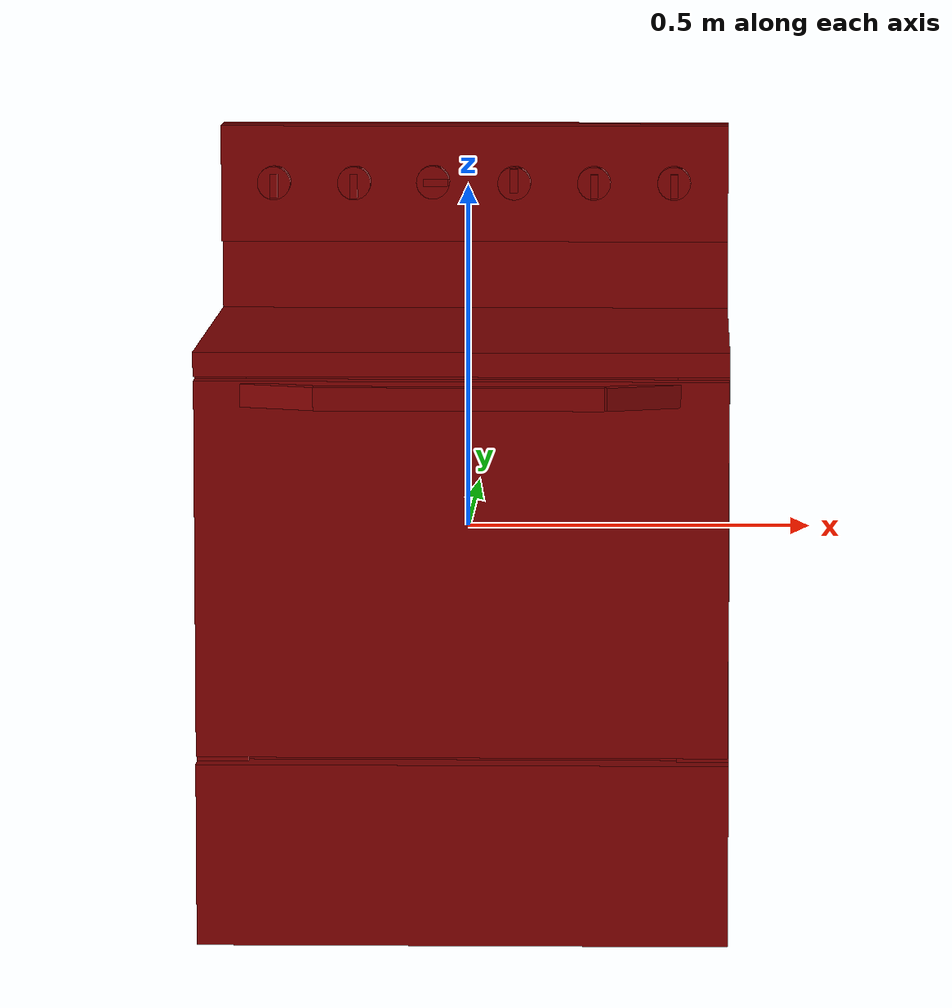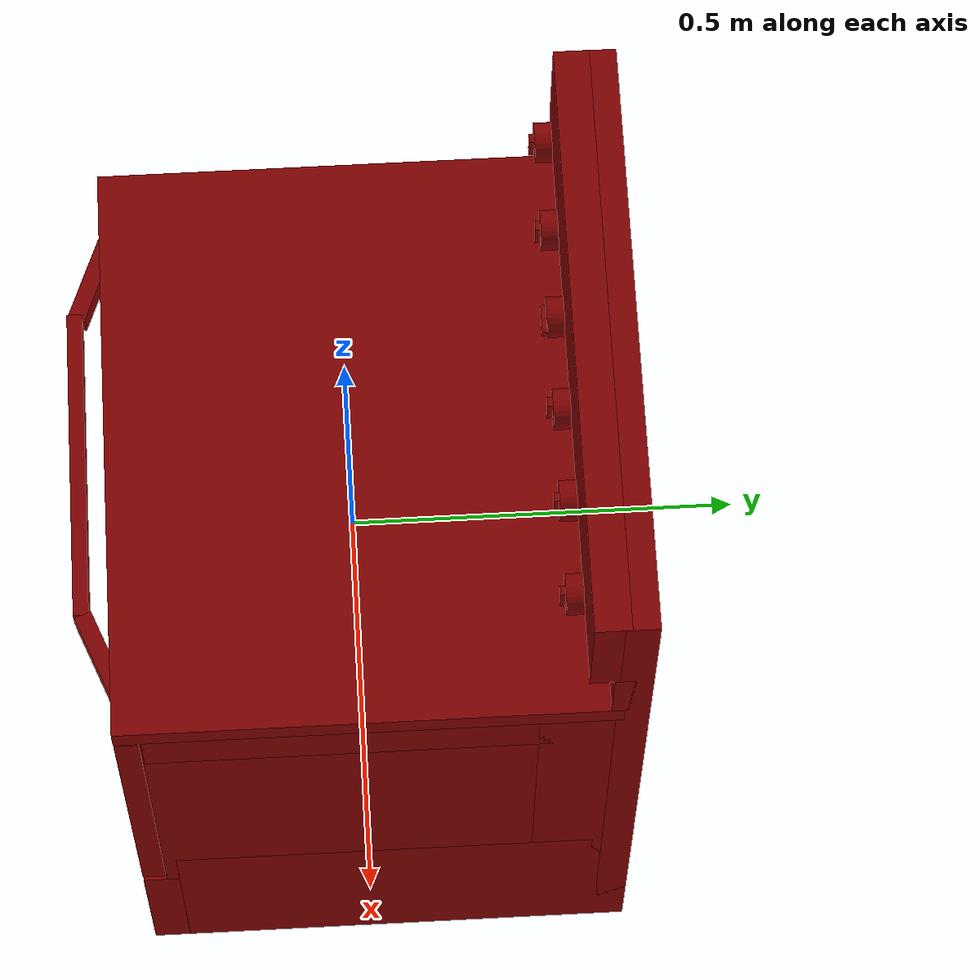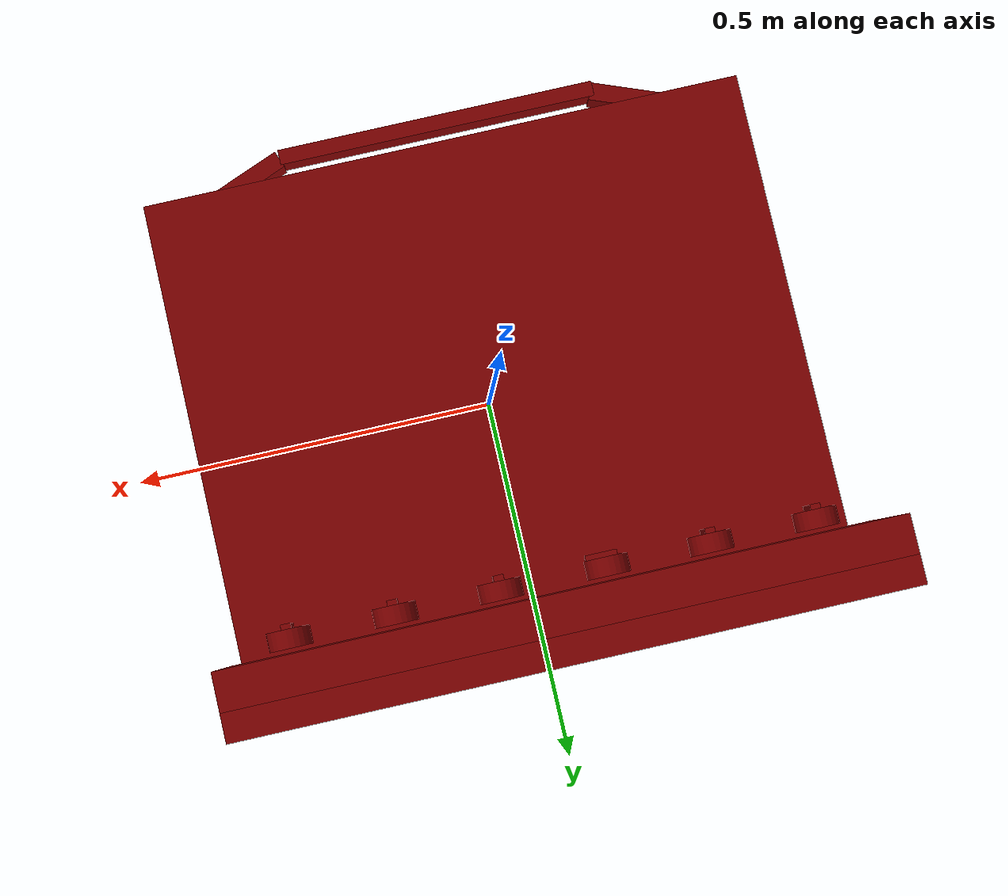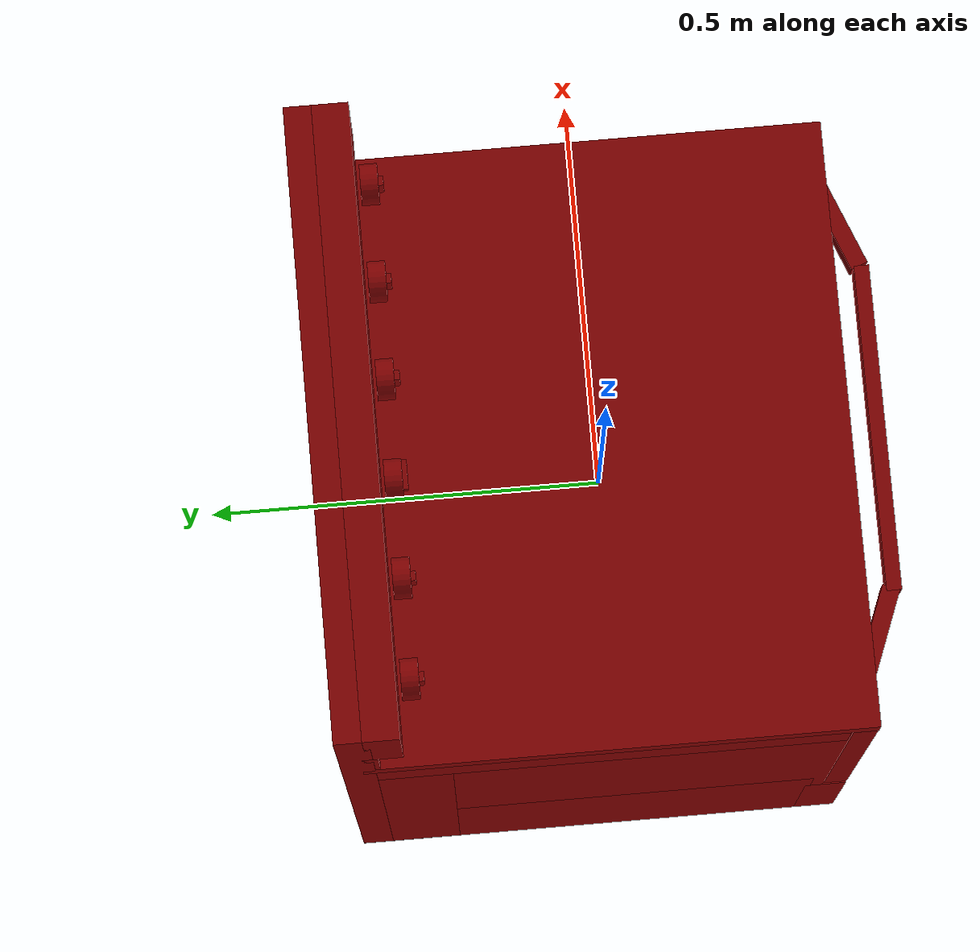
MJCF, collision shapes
<?xml version='1.0' encoding='UTF-8'?>
<mujoco model="model">
  <option timestep="0.002" gravity="0.0 0.0 -9.81"/>
  <compiler angle="radian"/>
  <asset>
    <mesh file="visuals/knob_front_left.obj" name="knob_front_left_vis"/>
    <mesh file="visuals/knob_front_right.obj" name="knob_front_right_vis"/>
    <mesh file="visuals/knob_rear_left.obj" name="knob_rear_left_vis"/>
    <mesh file="visuals/knob_rear_right.obj" name="knob_rear_right_vis"/>
    <mesh file="visuals/Body001.obj" name="Body001_vis"/>
    <mesh file="visuals/Door001.obj" name="Door001_vis"/>
    <mesh file="visuals/Door001_Clear.obj" name="Door001_Clear_vis"/>
    <mesh file="visuals/Knob001.obj" name="Knob001_vis"/>
    <mesh file="visuals/Knob002.obj" name="Knob002_vis"/>
    <mesh file="visuals/Shelf001.obj" name="Shelf001_vis"/>
    <texture file="visuals/T_BC001.png" name="Body001_material" type="2d"/>
    <material name="Body001_material" rgba="1 1 1 1.0" texture="Body001_material" shininess="0.4472135901451111" specular="1"/>
    <texture file="visuals/T_BC001.png" name="knob_front_left_material" type="2d"/>
    <material name="knob_front_left_material" rgba="1 1 1 1.0" texture="knob_front_left_material" shininess="0.4472135901451111" specular="0.3103448502657381"/>
    <texture file="visuals/T_BC001.png" name="knob_front_right_material" type="2d"/>
    <material name="knob_front_right_material" rgba="1 1 1 1.0" texture="knob_front_right_material" shininess="0.4472135901451111" specular="0.3103448502657381"/>
    <texture file="visuals/T_BC001.png" name="knob_rear_left_material" type="2d"/>
    <material name="knob_rear_left_material" rgba="1 1 1 1.0" texture="knob_rear_left_material" shininess="0.4472135901451111" specular="0.3103448502657381"/>
    <texture file="visuals/T_BC001.png" name="knob_rear_right_material" type="2d"/>
    <material name="knob_rear_right_material" rgba="1 1 1 1.0" texture="knob_rear_right_material" shininess="0.4472135901451111" specular="0.3103448502657381"/>
    <texture file="visuals/T_BC001.png" name="Door001_material" type="2d"/>
    <material name="Door001_material" rgba="1 1 1 1.0" texture="Door001_material" shininess="0.4472135901451111" specular="1"/>
    <texture file="visuals/T_BC001.png" name="Door001_Clear_material" type="2d"/>
    <material name="Door001_Clear_material" rgba="1 1 1 0.5" texture="Door001_Clear_material" shininess="0.4472135901451111" specular="0.3103448502657381"/>
    <texture file="visuals/T_BC001.png" name="Knob001_material" type="2d"/>
    <material name="Knob001_material" rgba="1 1 1 1.0" texture="Knob001_material" shininess="0.4472135901451111" specular="0.3103448502657381"/>
    <texture file="visuals/T_BC001.png" name="Knob002_material" type="2d"/>
    <material name="Knob002_material" rgba="1 1 1 1.0" texture="Knob002_material" shininess="0.4472135901451111" specular="0.3103448502657381"/>
    <texture file="visuals/T_BC001.png" name="Shelf001_material" type="2d"/>
    <material name="Shelf001_material" rgba="1 1 1 1.0" texture="Shelf001_material" shininess="0.4472135901451111" specular="5"/>
  </asset>
  <default>
    <default class="visual">
      <geom conaffinity="0" contype="0" group="1" type="mesh"/>
    </default>
    <default class="collision">
      <geom group="0" rgba="0.5 0 0 0.5"/>
    </default>
    <default class="spawn">
      <geom group="0" rgba="1 1 1 0.5" contype="0" conaffinity="0"/>
      <site group="0" rgba="1 1 1 0.5"/>
    </default>
    <default class="region">
      <geom group="1" conaffinity="0" contype="0" rgba="0 1 0 0"/>
    </default>
  </default>
  <worldbody>
    <body>
      <body name="object">
        <geom mesh="Body001_vis" type="mesh" solimp="0.998 0.998 0.001" solref="0.001 1" friction="0.95 0.3 0.1" class="visual" material="Body001_material"/>
        <geom class="collision" type="box" pos="-0.00000004 0.33141214 0.00043112" size="0.3806862235069275 0.020578525960445404 0.5647372007369995" quat="1.0 0.0 0.0 0.0"/>
        <geom class="collision" type="box" pos="-0.00000006 0.01016810 0.27145514" size="0.3806861639022827 0.3160743713378906 0.017430316656827927" quat="1.0 0.0 0.0 0.0"/>
        <geom class="collision" type="box" pos="-0.34369320 0.01970948 -0.15603361" size="0.03699234873056412 0.29352039098739624 0.40876227617263794" quat="1.0 0.0 0.0 0.0"/>
        <geom class="collision" type="box" pos="0.34371990 0.01970945 -0.15603361" size="0.0369655005633831 0.29352062940597534 0.4087626338005066" quat="1.0 0.0 0.0 0.0"/>
        <geom class="collision" type="box" pos="0.00000008 0.04733154 -0.39487693" size="0.38068604469299316 0.3046591281890869 0.17153392732143402" quat="1.0 0.0 0.0 0.0"/>
        <geom class="collision" type="box" pos="-0.00000009 0.29649845 0.47859463" size="0.38068610429763794 0.022199612110853195 0.08681080490350723" quat="1.0 0.0 0.0 0.0"/>
        <geom class="collision" type="box" pos="-0.00000008 -0.27832919 -0.43511754" size="0.38068604469299316 0.027558965608477592 0.13129544258117676" quat="1.0 0.0 0.0 0.0"/>
        <geom class="collision" type="box" pos="-0.00000008 0.02697441 0.21697469" size="0.3806861639022827 0.29926806688308716 0.03758356720209122" quat="1.0 0.0 0.0 0.0"/>
        <geom class="collision" type="box" pos="-0.00000005 0.27038795 -0.14452395" size="0.3806861639022827 0.052861034870147705 0.4197821319103241" quat="1.0 0.0 0.0 0.0"/>
        <geom class="collision" type="box" pos="0.00000003 0.32591942 0.34033477" size="0.3806862235069275 0.021302122622728348 0.05144909396767616" quat="1.0 0.0 0.0 0.0"/>
        <geom class="collision" type="box" pos="-0.30340379 -0.02562435 -0.03495346" size="0.008126465603709221 0.2303265929222107 0.005830086302012205" quat="1.0 0.0 0.0 0.0"/>
        <geom class="collision" type="box" pos="0.30343747 -0.02562435 -0.03495346" size="0.008126472122967243 0.230326846241951 0.005830091889947653" quat="1.0 0.0 0.0 0.0"/>
        <body name="knob_front_left">
          <joint axis="0.0 -1.0 0.0" pos="-0.29997504 0.26397789 0.48121476" limited="true" name="knob_front_left_joint" range="0.0 3.490658503988659" type="hinge" damping="0.05" frictionloss="0.75" armature="1"/>
          <geom mesh="knob_front_left_vis" type="mesh" solimp="0.998 0.998 0.001" solref="0.001 1" friction="0.95 0.3 0.1" class="visual" material="knob_front_left_material"/>
          <geom class="collision" type="cylinder" pos="-0.30022097 0.25812337 0.48115158" size="0.02481306903064251 0.010621534660458565" quat="0.7071067094802856 0.70710688829422 0.0 0.0" friction="100 0.5 0.01"/>
          <geom class="collision" type="box" pos="-0.30009180 0.24537212 0.47713476" size="0.005765819922089577 0.003975167870521545 0.01800193078815937" quat="1.0 0.0 0.0 0.0" name="knob_front_left_main" friction="100 0.5 0.01"/>
        </body>
        <body name="knob_front_right">
          <joint axis="0.0 -1.0 0.0" pos="0.30002493 0.26397789 0.48121476" limited="true" name="knob_front_right_joint" range="0.0 3.490658503988659" type="hinge" damping="0.05" frictionloss="0.75" armature="1"/>
          <geom mesh="knob_front_right_vis" type="mesh" solimp="0.998 0.998 0.001" solref="0.001 1" friction="0.95 0.3 0.1" class="visual" material="knob_front_right_material"/>
          <geom class="collision" type="cylinder" pos="0.29960778 0.25812337 0.48132321" size="0.02481306903064251 0.010621534660458565" quat="0.7071067094802856 0.70710688829422 0.0 0.0" friction="100 0.5 0.01"/>
          <geom class="collision" type="box" pos="0.29987156 0.24537212 0.47735271" size="0.005765827838331461 0.0039751711301505566 0.018001951277256012" quat="1.0 0.0 0.0 0.0" name="knob_front_right_main" friction="100 0.5 0.01"/>
        </body>
        <body name="knob_rear_left">
          <joint axis="0.0 -1.0 0.0" pos="-0.17997505 0.26397789 0.48123443" limited="true" name="knob_rear_left_joint" range="0.0 3.490658503988659" type="hinge" damping="0.05" armature="1" frictionloss="0.75"/>
          <geom mesh="knob_rear_left_vis" type="mesh" solimp="0.998 0.998 0.001" solref="0.001 1" friction="0.95 0.3 0.1" class="visual" material="knob_rear_left_material"/>
          <geom class="collision" type="cylinder" pos="-0.17979206 0.25812337 0.48115158" size="0.02481306903064251 0.010621534660458565" quat="0.7071067094802856 0.70710688829422 0.0 0.0" friction="100 0.5 0.01"/>
          <geom class="collision" type="box" pos="-0.18023492 0.24537212 0.47713476" size="0.005765830632299185 0.003975172992795706 0.018001973628997803" quat="1.0 0.0 0.0 0.0" name="knob_rear_left_main" friction="100 0.5 0.01"/>
        </body>
        <body name="knob_rear_right">
          <joint axis="0.0 -1.0 0.0" pos="0.18002495 0.26397789 0.48123443" limited="true" name="knob_rear_right_joint" range="0.0 3.490658503988659" type="hinge" damping="0.05" frictionloss="0.75" armature="1"/>
          <geom mesh="knob_rear_right_vis" type="mesh" solimp="0.998 0.998 0.001" solref="0.001 1" friction="0.95 0.3 0.1" class="visual" material="knob_rear_right_material"/>
          <geom class="collision" type="cylinder" pos="0.17970701 0.25812337 0.48109198" size="0.02481306903064251 0.010621534660458565" quat="0.7071067094802856 0.70710688829422 0.0 0.0" friction="100 0.5 0.01"/>
          <geom class="collision" type="box" pos="0.17995484 0.24537212 0.47735271" size="0.005765838548541069 0.003975176252424717 0.018001994118094444" quat="1.0 0.0 0.0 0.0" name="knob_rear_right_main" friction="100 0.5 0.01"/>
        </body>
        <body name="Door001">
          <joint axis="1.0 0.0 0.0" pos="0.00002470 -0.30591324 -0.29060394" limited="true" name="Door001_joint" range="0.0 1.5707963267948966" type="hinge" damping="1" frictionloss="1" armature=".01" stiffness="0.05"/>
          <geom mesh="Door001_vis" type="mesh" solimp="0.998 0.998 0.001" solref="0.001 1" friction="0.95 0.3 0.1" class="visual" material="Door001_material"/>
          <geom class="collision" type="box" pos="-0.00016396 -0.29060730 -0.02252813" size="0.37981483340263367 0.0152989961206913 0.27016061544418335" quat="1.0 0.0 0.0 0.0"/>
          <geom class="collision" type="box" pos="-0.25672275 -0.31927585 0.22760564" size="0.057031355798244476 0.01119912974536419 0.016437169164419174" quat="1.9142196094890096e-07 0.9831273555755615 -0.18292252719402313 -3.5616331217624975e-08"/>
          <geom class="collision" type="box" pos="0.25520575 -0.31996482 0.22760564" size="0.0557350218296051 0.011199130676686764 0.016437169164419174" quat="0.9820809364318848 0.0 0.0 0.1884595900774002"/>
          <geom class="collision" type="box" pos="-0.00219345 -0.34284508 0.22760564" size="0.20576396584510803 0.009586282074451447 0.01643751747906208" quat="1.0 0.0 0.0 0.0"/>
          <geom class="collision" type="box" pos="-0.00011302 -0.29200640 -0.00566677" size="0.3775268495082855 0.010744334198534489 0.14932073652744293" quat="1.0 0.0 0.0 0.0"/>
          <body name="Door001_Clear">
            <geom mesh="Door001_Clear_vis" type="mesh" solimp="0.998 0.998 0.001" solref="0.001 1" friction="0.95 0.3 0.1" class="visual" material="Door001_Clear_material"/>
            <geom class="collision" type="box" pos="-0.00011302 -0.29200640 -0.00566677" size="0.3775268495082855 0.010744334198534489 0.14932073652744293" quat="1.0 0.0 0.0 0.0"/>
          </body>
        </body>
        <body name="Knob001">
          <joint axis="0.0 1.0 0.0" pos="-0.06086761 0.25894112 0.48261145" limited="true" name="Knob001_joint" range="0.0 5.235987755982989" type="hinge" damping="0.05" armature="0.001"/>
          <geom mesh="Knob001_vis" type="mesh" solimp="0.998 0.998 0.001" solref="0.001 1" friction="0.95 0.3 0.1" class="visual" material="Knob001_material"/>
          <geom class="collision" type="cylinder" pos="-0.06157003 0.25812337 0.48248187" size="0.02481306903064251 0.010621534660458565" quat="0.7071067094802856 0.70710688829422 0.0 0.0"/>
          <geom class="collision" type="box" pos="-0.05733858 0.24537212 0.48249927" size="0.018002016469836235 0.003975179977715015 0.005765844136476517" quat="1.0 0.0 0.0 0.0"/>
        </body>
        <body name="Knob002">
          <joint axis="0.0 1.0 0.0" pos="0.06002495 0.26397789 0.48121476" limited="true" name="Knob002_joint" range="0.0 5.585053606381854" type="hinge" damping="0.05" frictionloss="0.1" armature="0.001"/>
          <geom mesh="Knob002_vis" type="mesh" solimp="0.998 0.998 0.001" solref="0.001 1" friction="0.95 0.3 0.1" class="visual" material="Knob002_material"/>
          <geom class="collision" type="cylinder" pos="0.06021304 0.25812337 0.48115158" size="0.02481306903064251 0.010621534660458565" quat="0.7071067094802856 0.70710688829422 0.0 0.0" density="0.001"/>
          <geom class="collision" type="box" pos="0.05986389 0.24485770 0.48577774" size="0.00576584879308939 0.003975181374698877 0.018002035096287727" quat="1.0 0.0 0.0 0.0" density="0.001"/>
        </body>
        <body name="Shelf001">
          <joint axis="0.0 -1.0 0.0" pos="-0.00030982 -0.02778162 -0.02440071" limited="true" name="Shelf001_joint" range="0.0 0.3" type="slide" damping="1" frictionloss="1" armature=".01" stiffness="0.05"/>
          <geom mesh="Shelf001_vis" type="mesh" solimp="0.998 0.998 0.001" solref="0.001 1" friction="0.95 0.3 0.1" class="visual" material="Shelf001_material"/>
          <geom class="collision" type="box" pos="0.00004929 -0.02774362 -0.02444427" size="0.3058905601501465 0.22338691353797913 0.0033582074102014303" quat="1.0 0.0 0.0 0.0"/>
        </body>
        <geom class="region" name="reg_int" type="box" pos="-2.506499999999079e-05 -0.02881033000000001 -0.021701229999999988" size="0.301569235 0.24124599000000002 0.19622017"/>
        <site type="cylinder" rgba="0.5 0 0 0.5" size="0.07591041177511215 0.0001" pos="0.18573228 0.14015998 0.28730112" name="burner_on_rear_right"/>
        <site type="cylinder" rgba="0.5 0 0 0.5" size="0.09568279981613159 0.0001" pos="-0.15299031 0.12825166 0.28730112" name="burner_on_rear_left"/>
        <site type="cylinder" rgba="0.5 0 0 0.5" size="0.12052343785762787 0.0001" pos="0.16929057 -0.14367304 0.28730112" name="burner_on_front_right"/>
        <site type="cylinder" rgba="0.5 0 0 0.5" size="0.09798440337181091 0.0001" pos="-0.17036362 -0.14766781 0.28730112" name="burner_on_front_left"/>
        <site name="burner_rear_right_place_site" type="cylinder" rgba="0.5 0 0 0" size="0.07591041177511215 4.999999873689376e-05" pos="0.18573228 0.14015998 0.28730112"/>
        <site name="burner_rear_left_place_site" type="cylinder" rgba="0.5 0 0 0" size="0.09568279981613159 4.999999873689376e-05" pos="-0.15299031 0.12825166 0.28730112"/>
        <site name="burner_front_right_place_site" type="cylinder" rgba="0.5 0 0 0" size="0.12052343785762787 4.999999873689376e-05" pos="0.16929057 -0.14367304 0.28730112"/>
        <site name="burner_front_left_place_site" type="cylinder" rgba="0.5 0 0 0" size="0.09798440337181091 4.999999873689376e-05" pos="-0.17036362 -0.14766781 0.28730112"/>
        <geom class="region" name="reg_main" type="box" pos="4.999999997368221e-09 0.023042265000000006 -0.13876447000000003" size="0.38168598499999995 0.329948375 0.42865012"/>
      </body>
    </body>
  </worldbody>
  <actuator>
    <motor name="knob_front_left_joint_actuator" joint="knob_front_left_joint" gear="10"/>
    <motor name="knob_front_right_joint_actuator" joint="knob_front_right_joint" gear="10"/>
    <motor name="knob_rear_left_joint_actuator" joint="knob_rear_left_joint" gear="10"/>
    <motor name="knob_rear_right_joint_actuator" joint="knob_rear_right_joint" gear="10"/>
    <motor name="Door001_joint_actuator" joint="Door001_joint" gear="50"/>
    <motor name="Knob001_joint_actuator" joint="Knob001_joint" gear="50"/>
    <motor name="Knob002_joint_actuator" joint="Knob002_joint" gear="50"/>
    <motor name="Shelf001_joint_actuator" joint="Shelf001_joint" gear="50"/>
  </actuator>
</mujoco>
